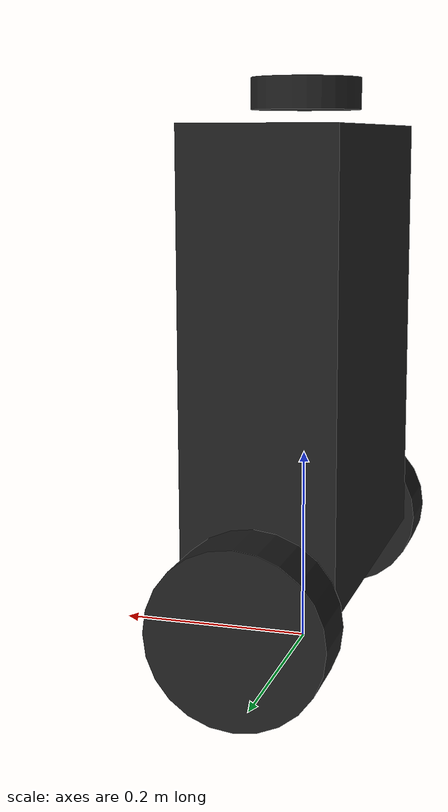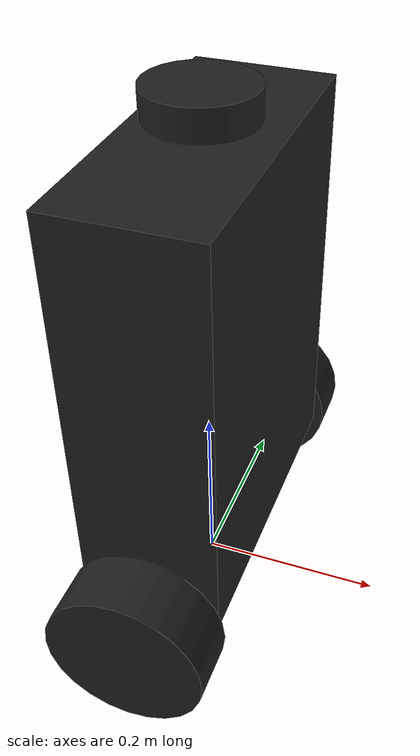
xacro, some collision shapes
<?xml version="1.0"?>

<robot name="balance_robot" xmlns:xacro="http://ros.org/wiki/xacro">
  <xacro:arg name="use_actual_stl_assembly" default="false"/>
  <xacro:property name="stl_assembly_origin_xyz" value="-0.110383 -0.202 0.064314"/>
  <xacro:property name="stl_assembly_origin_rpy" value="0 0 0"/>
  <xacro:property name="stl_assembly_scale" value="0.001 0.001 0.001"/>

  <xacro:include filename="$(find robot_description)/urdf/color_properties.xacro"/>
  <xacro:include filename="$(find robot_description)/urdf/balance_robot_gazebo.xacro"/>

  <link name="base_footprint"/>

  <joint name="base_joint" type="fixed">
    <parent link="base_footprint"/>
    <child link="base_link"/>
    <origin xyz="0.0 0.0 0.0" rpy="0 0 0"/>
  </joint>

  <link name="base_link">
    <xacro:if value="$(arg use_actual_stl_assembly)">
      <visual>
        <origin xyz="${stl_assembly_origin_xyz}" rpy="${stl_assembly_origin_rpy}"/>
        <geometry>
          <mesh filename="package://robot_description/stl/body_side.stl" scale="${stl_assembly_scale}"/>
        </geometry>
        <material name="light_black"/>
      </visual>

      <visual>
        <origin xyz="${stl_assembly_origin_xyz}" rpy="${stl_assembly_origin_rpy}"/>
        <geometry>
          <mesh filename="package://robot_description/stl/robot_neck.stl" scale="${stl_assembly_scale}"/>
        </geometry>
        <material name="dark"/>
      </visual>

      <visual>
        <origin xyz="${stl_assembly_origin_xyz}" rpy="${stl_assembly_origin_rpy}"/>
        <geometry>
          <mesh filename="package://robot_description/stl/head_rear.stl" scale="${stl_assembly_scale}"/>
        </geometry>
        <material name="light_black"/>
      </visual>

      <visual>
        <origin xyz="${stl_assembly_origin_xyz}" rpy="${stl_assembly_origin_rpy}"/>
        <geometry>
          <mesh filename="package://robot_description/stl/head_top.stl" scale="${stl_assembly_scale}"/>
        </geometry>
        <material name="dark"/>
      </visual>

      <visual>
        <origin xyz="${stl_assembly_origin_xyz}" rpy="${stl_assembly_origin_rpy}"/>
        <geometry>
          <mesh filename="package://robot_description/stl/gemini335_case.stl" scale="${stl_assembly_scale}"/>
        </geometry>
        <material name="grey"/>
      </visual>
    </xacro:if>

    <xacro:unless value="$(arg use_actual_stl_assembly)">
      <visual>
        <origin xyz="0.0 0.0 0.31" rpy="0 0 0"/>
        <geometry>
          <box size="0.15 0.35 0.45"/>
        </geometry>
        <material name="light_black"/>
      </visual>
    </xacro:unless>

    <collision>
      <origin xyz="0.0 0.0 0.31" rpy="0 0 0"/>
      <geometry>
        <box size="0.15 0.35 0.45"/>
      </geometry>
    </collision>

    <inertial>
      <origin xyz="0 0 0.31" rpy="0 0 0"/>
      <mass value="11.0"/>
      <inertia ixx="0.2979166" ixy="0.0" ixz="0.0"
               iyy="0.20625" iyz="0.0"
               izz="0.1329166" />
    </inertial>
  </link>

  <joint name="wheel_left_joint" type="continuous">
    <parent link="base_link"/>
    <child link="wheel_left_link"/>
    <origin xyz="0.0 0.215 0.085" rpy="1.57 0 0"/>
    <axis xyz="0 0 1"/>
  </joint>

  <link name="wheel_left_link">
    <visual>
      <origin xyz="0 0 0" rpy="0 0 0"/>
      <geometry>
        <cylinder length="0.065" radius="0.085"/>
      </geometry>
      <material name="dark"/>
    </visual>

    <collision>
      <origin xyz="0 0 0" rpy="0 0 0"/>
      <geometry>
        <cylinder length="0.065" radius="0.085"/>
      </geometry>
    </collision>

    <inertial>
      <origin xyz="0 0 0" />
      <mass value="3" />
      <inertia ixx="0.0108375" ixy="0.0" ixz="0.0"
               iyy="0.006475" iyz="0.0"
               izz="0.006475" />
      </inertial>
  </link>

  <joint name="wheel_right_joint" type="continuous">
    <parent link="base_link"/>
    <child link="wheel_right_link"/>
    <origin xyz="0.0 -0.215 0.085" rpy="1.57 0 0"/>
    <axis xyz="0 0 1"/>
  </joint>

  <link name="wheel_right_link">
    <visual>
      <origin xyz="0 0 0" rpy="0 0 0"/>
      <geometry>
        <cylinder length="0.065" radius="0.085"/>
      </geometry>
      <material name="dark"/>
    </visual>

    <collision>
      <origin xyz="0 0 0" rpy="0 0 0"/>
      <geometry>
        <cylinder length="0.065" radius="0.085"/>
      </geometry>
    </collision>

    <inertial>
      <origin xyz="0 0 0" />
      <mass value="3" />
      <inertia ixx="0.0108375" ixy="0.0" ixz="0.0"
               iyy="0.006475" iyz="0.0"
               izz="0.006475" />
      </inertial>
  </link>

  <joint name="imu_joint" type="fixed">
    <parent link="base_link"/>
    <child link="imu_link"/>
    <origin xyz="0 0 0.535" rpy="0 0 0"/>
  </joint>

  <link name="imu_link"/>

  <joint name="scan_joint" type="fixed">
    <parent link="base_link"/>
    <child link="base_scan"/>
    <origin xyz="0.0 0.0 0.565" rpy="0 0 0"/>
  </joint>

  <link name="base_scan">
    <visual>
      <origin xyz="0 0 0.0" rpy="0 0 0"/>
      <geometry>
        <mesh filename="package://turtlebot3_description/meshes/sensors/lds.stl" scale="0.001 0.001 0.001"/>
      </geometry>
      <material name="dark"/>
    </visual>

    <collision>
      <origin xyz="0 0 0" rpy="0 0 0"/>
      <geometry>
        <cylinder length="0.0315" radius="0.055"/>
      </geometry>
    </collision>

    <inertial>
      <mass value="0.114" />
      <origin xyz="0 0 0" />
      <inertia ixx="0.001" ixy="0.0" ixz="0.0"
               iyy="0.001" iyz="0.0"
               izz="0.001" />
    </inertial>
  </link>
</robot>
